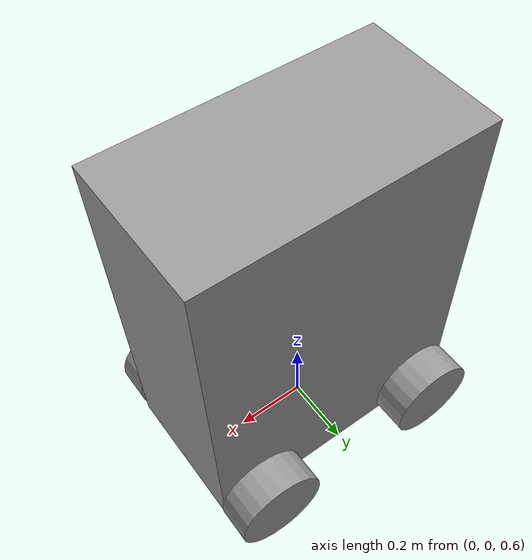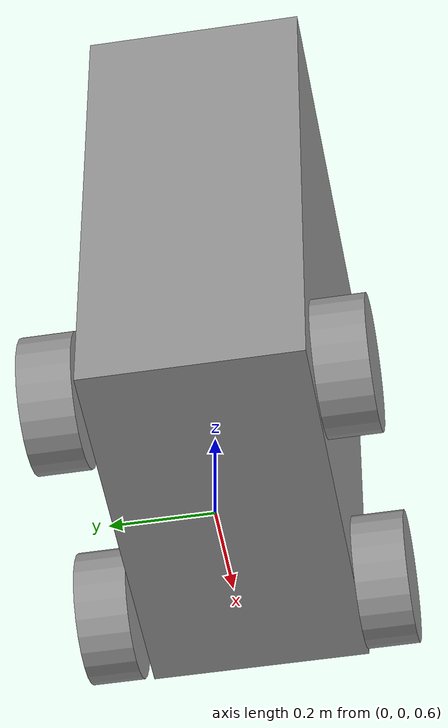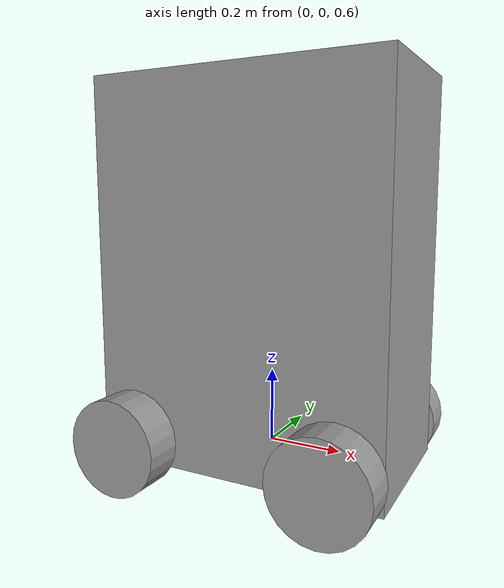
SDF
<?xml version='1.0'?>
<sdf version='1.6'>
  <model name='robot'>
    <link name='link_1'>
      <pose frame=''>0.270998 -0.281948 0.647062 1.57 -0 0</pose>
      <inertial>
        <mass>1</mass>
        <inertia>
          <ixx>0.145833</ixx>
          <ixy>0</ixy>
          <ixz>0</ixz>
          <iyy>0.145833</iyy>
          <iyz>0</iyz>
          <izz>0.125</izz>
        </inertia>
        <pose frame=''>0 0 0 0 -0 0</pose>
      </inertial>
      <self_collide>0</self_collide>
      <kinematic>0</kinematic>
      <visual name='visual'>
        <pose frame=''>0 0 0 0 -0 0</pose>
        <geometry>
          <cylinder>
            <radius>0.127</radius>
            <length>0.1</length>
          </cylinder>
        </geometry>
        <material>
          <lighting>1</lighting>
          <script>
            <uri>file://media/materials/scripts/gazebo.material</uri>
            <name>Gazebo/Grey</name>
          </script>
          <shader type='pixel'>
            <normal_map>__default__</normal_map>
          </shader>
          <ambient>0.3 0.3 0.3 1</ambient>
          <diffuse>0.7 0.7 0.7 1</diffuse>
          <specular>0.01 0.01 0.01 1</specular>
          <emissive>0 0 0 1</emissive>
        </material>
        <transparency>0</transparency>
        <cast_shadows>1</cast_shadows>
      </visual>
      <collision name='collision'>
        <laser_retro>0</laser_retro>
        <max_contacts>10</max_contacts>
        <pose frame=''>0 0 0 0 -0 0</pose>
        <geometry>
          <cylinder>
            <radius>0.127</radius>
            <length>0.1</length>
          </cylinder>
        </geometry>
        <surface>
          <friction>
            <ode>
              <mu>1</mu>
              <mu2>1</mu2>
              <fdir1>0 0 0</fdir1>
              <slip1>0</slip1>
              <slip2>0</slip2>
            </ode>
            <torsional>
              <coefficient>1</coefficient>
              <patch_radius>0</patch_radius>
              <surface_radius>0</surface_radius>
              <use_patch_radius>1</use_patch_radius>
              <ode>
                <slip>0</slip>
              </ode>
            </torsional>
          </friction>
          <bounce>
            <restitution_coefficient>0</restitution_coefficient>
            <threshold>1e+06</threshold>
          </bounce>
          <contact>
            <collide_without_contact>0</collide_without_contact>
            <collide_without_contact_bitmask>1</collide_without_contact_bitmask>
            <collide_bitmask>1</collide_bitmask>
            <ode>
              <soft_cfm>0</soft_cfm>
              <soft_erp>0.2</soft_erp>
              <kp>1e+13</kp>
              <kd>1</kd>
              <max_vel>0.01</max_vel>
              <min_depth>0</min_depth>
            </ode>
            <bullet>
              <split_impulse>1</split_impulse>
              <split_impulse_penetration_threshold>-0.01</split_impulse_penetration_threshold>
              <soft_cfm>0</soft_cfm>
              <soft_erp>0.2</soft_erp>
              <kp>1e+13</kp>
              <kd>1</kd>
            </bullet>
          </contact>
        </surface>
      </collision>
    </link>
    <link name='link_1_clone'>
      <pose frame=''>0.275142 0.249179 0.641427 1.57 -0 0</pose>
      <inertial>
        <mass>1</mass>
        <inertia>
          <ixx>0.145833</ixx>
          <ixy>0</ixy>
          <ixz>0</ixz>
          <iyy>0.145833</iyy>
          <iyz>0</iyz>
          <izz>0.125</izz>
        </inertia>
        <pose frame=''>0 0 0 0 -0 0</pose>
      </inertial>
      <self_collide>0</self_collide>
      <kinematic>0</kinematic>
      <visual name='visual'>
        <pose frame=''>0 0 0 0 -0 0</pose>
        <geometry>
          <cylinder>
            <radius>0.127</radius>
            <length>0.1</length>
          </cylinder>
        </geometry>
        <material>
          <lighting>1</lighting>
          <script>
            <uri>file://media/materials/scripts/gazebo.material</uri>
            <name>Gazebo/Grey</name>
          </script>
          <shader type='pixel'>
            <normal_map>__default__</normal_map>
          </shader>
          <ambient>0.3 0.3 0.3 1</ambient>
          <diffuse>0.7 0.7 0.7 1</diffuse>
          <specular>0.01 0.01 0.01 1</specular>
          <emissive>0 0 0 1</emissive>
        </material>
        <transparency>0</transparency>
        <cast_shadows>1</cast_shadows>
      </visual>
      <collision name='collision'>
        <laser_retro>0</laser_retro>
        <max_contacts>10</max_contacts>
        <pose frame=''>0 0 0 0 -0 0</pose>
        <geometry>
          <cylinder>
            <radius>0.127</radius>
            <length>0.1</length>
          </cylinder>
        </geometry>
        <surface>
          <friction>
            <ode>
              <mu>1</mu>
              <mu2>1</mu2>
              <fdir1>0 0 0</fdir1>
              <slip1>0</slip1>
              <slip2>0</slip2>
            </ode>
            <torsional>
              <coefficient>1</coefficient>
              <patch_radius>0</patch_radius>
              <surface_radius>0</surface_radius>
              <use_patch_radius>1</use_patch_radius>
              <ode>
                <slip>0</slip>
              </ode>
            </torsional>
          </friction>
          <bounce>
            <restitution_coefficient>0</restitution_coefficient>
            <threshold>1e+06</threshold>
          </bounce>
          <contact>
            <collide_without_contact>0</collide_without_contact>
            <collide_without_contact_bitmask>1</collide_without_contact_bitmask>
            <collide_bitmask>1</collide_bitmask>
            <ode>
              <soft_cfm>0</soft_cfm>
              <soft_erp>0.2</soft_erp>
              <kp>1e+13</kp>
              <kd>1</kd>
              <max_vel>0.01</max_vel>
              <min_depth>0</min_depth>
            </ode>
            <bullet>
              <split_impulse>1</split_impulse>
              <split_impulse_penetration_threshold>-0.01</split_impulse_penetration_threshold>
              <soft_cfm>0</soft_cfm>
              <soft_erp>0.2</soft_erp>
              <kp>1e+13</kp>
              <kd>1</kd>
            </bullet>
          </contact>
        </surface>
      </collision>
    </link>
    <link name='link_1_clone_0'>
      <pose frame=''>-0.275153 0.242976 0.647654 1.57 -0 0</pose>
      <inertial>
        <mass>1</mass>
        <inertia>
          <ixx>0.145833</ixx>
          <ixy>0</ixy>
          <ixz>0</ixz>
          <iyy>0.145833</iyy>
          <iyz>0</iyz>
          <izz>0.125</izz>
        </inertia>
        <pose frame=''>0 0 0 0 -0 0</pose>
      </inertial>
      <self_collide>0</self_collide>
      <kinematic>0</kinematic>
      <visual name='visual'>
        <pose frame=''>0 0 0 0 -0 0</pose>
        <geometry>
          <cylinder>
            <radius>0.127</radius>
            <length>0.1</length>
          </cylinder>
        </geometry>
        <material>
          <lighting>1</lighting>
          <script>
            <uri>file://media/materials/scripts/gazebo.material</uri>
            <name>Gazebo/Grey</name>
          </script>
          <shader type='pixel'>
            <normal_map>__default__</normal_map>
          </shader>
          <ambient>0.3 0.3 0.3 1</ambient>
          <diffuse>0.7 0.7 0.7 1</diffuse>
          <specular>0.01 0.01 0.01 1</specular>
          <emissive>0 0 0 1</emissive>
        </material>
        <transparency>0</transparency>
        <cast_shadows>1</cast_shadows>
      </visual>
      <collision name='collision'>
        <laser_retro>0</laser_retro>
        <max_contacts>10</max_contacts>
        <pose frame=''>0 0 0 0 -0 0</pose>
        <geometry>
          <cylinder>
            <radius>0.127</radius>
            <length>0.1</length>
          </cylinder>
        </geometry>
        <surface>
          <friction>
            <ode>
              <mu>1</mu>
              <mu2>1</mu2>
              <fdir1>0 0 0</fdir1>
              <slip1>0</slip1>
              <slip2>0</slip2>
            </ode>
            <torsional>
              <coefficient>1</coefficient>
              <patch_radius>0</patch_radius>
              <surface_radius>0</surface_radius>
              <use_patch_radius>1</use_patch_radius>
              <ode>
                <slip>0</slip>
              </ode>
            </torsional>
          </friction>
          <bounce>
            <restitution_coefficient>0</restitution_coefficient>
            <threshold>1e+06</threshold>
          </bounce>
          <contact>
            <collide_without_contact>0</collide_without_contact>
            <collide_without_contact_bitmask>1</collide_without_contact_bitmask>
            <collide_bitmask>1</collide_bitmask>
            <ode>
              <soft_cfm>0</soft_cfm>
              <soft_erp>0.2</soft_erp>
              <kp>1e+13</kp>
              <kd>1</kd>
              <max_vel>0.01</max_vel>
              <min_depth>0</min_depth>
            </ode>
            <bullet>
              <split_impulse>1</split_impulse>
              <split_impulse_penetration_threshold>-0.01</split_impulse_penetration_threshold>
              <soft_cfm>0</soft_cfm>
              <soft_erp>0.2</soft_erp>
              <kp>1e+13</kp>
              <kd>1</kd>
            </bullet>
          </contact>
        </surface>
      </collision>
    </link>
    <link name='link_1_clone_1'>
      <pose frame=''>-0.282405 -0.289294 0.64073 1.57 -0 0</pose>
      <inertial>
        <mass>1</mass>
        <inertia>
          <ixx>0.145833</ixx>
          <ixy>0</ixy>
          <ixz>0</ixz>
          <iyy>0.145833</iyy>
          <iyz>0</iyz>
          <izz>0.125</izz>
        </inertia>
        <pose frame=''>0 0 0 0 -0 0</pose>
      </inertial>
      <self_collide>0</self_collide>
      <kinematic>0</kinematic>
      <visual name='visual'>
        <pose frame=''>0 0 0 0 -0 0</pose>
        <geometry>
          <cylinder>
            <radius>0.127</radius>
            <length>0.1</length>
          </cylinder>
        </geometry>
        <material>
          <lighting>1</lighting>
          <script>
            <uri>file://media/materials/scripts/gazebo.material</uri>
            <name>Gazebo/Grey</name>
          </script>
          <shader type='pixel'>
            <normal_map>__default__</normal_map>
          </shader>
          <ambient>0.3 0.3 0.3 1</ambient>
          <diffuse>0.7 0.7 0.7 1</diffuse>
          <specular>0.01 0.01 0.01 1</specular>
          <emissive>0 0 0 1</emissive>
        </material>
        <transparency>0</transparency>
        <cast_shadows>1</cast_shadows>
      </visual>
      <collision name='collision'>
        <laser_retro>0</laser_retro>
        <max_contacts>10</max_contacts>
        <pose frame=''>0 0 0 0 -0 0</pose>
        <geometry>
          <cylinder>
            <radius>0.127</radius>
            <length>0.1</length>
          </cylinder>
        </geometry>
        <surface>
          <friction>
            <ode>
              <mu>1</mu>
              <mu2>1</mu2>
              <fdir1>0 0 0</fdir1>
              <slip1>0</slip1>
              <slip2>0</slip2>
            </ode>
            <torsional>
              <coefficient>1</coefficient>
              <patch_radius>0</patch_radius>
              <surface_radius>0</surface_radius>
              <use_patch_radius>1</use_patch_radius>
              <ode>
                <slip>0</slip>
              </ode>
            </torsional>
          </friction>
          <bounce>
            <restitution_coefficient>0</restitution_coefficient>
            <threshold>1e+06</threshold>
          </bounce>
          <contact>
            <collide_without_contact>0</collide_without_contact>
            <collide_without_contact_bitmask>1</collide_without_contact_bitmask>
            <collide_bitmask>1</collide_bitmask>
            <ode>
              <soft_cfm>0</soft_cfm>
              <soft_erp>0.2</soft_erp>
              <kp>1e+13</kp>
              <kd>1</kd>
              <max_vel>0.01</max_vel>
              <min_depth>0</min_depth>
            </ode>
            <bullet>
              <split_impulse>1</split_impulse>
              <split_impulse_penetration_threshold>-0.01</split_impulse_penetration_threshold>
              <soft_cfm>0</soft_cfm>
              <soft_erp>0.2</soft_erp>
              <kp>1e+13</kp>
              <kd>1</kd>
            </bullet>
          </contact>
        </surface>
      </collision>
    </link>
    <link name='link_2'>
      <pose frame=''>-0.000264 -0.021745 1.07308 0 -0 0</pose>
      <inertial>
        <mass>0.325742</mass>
        <inertia>
          <ixx>0.0318616</ixx>
          <ixy>0</ixy>
          <ixz>0</ixz>
          <iyy>0.0437228</iyy>
          <iyz>0</iyz>
          <izz>0.021294</izz>
        </inertia>
        <pose frame=''>0 0 0 0 -0 0</pose>
      </inertial>
      <self_collide>0</self_collide>
      <kinematic>0</kinematic>
      <gravity>1</gravity>
      <visual name='visual'>
        <pose frame=''>0 0 0 0 -0 0</pose>
        <geometry>
          <box>
            <size>0.781473 0.41683 1</size>
          </box>
        </geometry>
        <material>
          <lighting>1</lighting>
          <script>
            <uri>file://media/materials/scripts/gazebo.material</uri>
            <name>Gazebo/Grey</name>
          </script>
          <shader type='pixel'>
            <normal_map>__default__</normal_map>
          </shader>
          <ambient>0.3 0.3 0.3 1</ambient>
          <diffuse>0.7 0.7 0.7 1</diffuse>
          <specular>0.01 0.01 0.01 1</specular>
          <emissive>0 0 0 1</emissive>
        </material>
        <transparency>0</transparency>
        <cast_shadows>1</cast_shadows>
      </visual>
      <collision name='collision'>
        <laser_retro>0</laser_retro>
        <max_contacts>10</max_contacts>
        <pose frame=''>0 0 0 0 -0 0</pose>
        <geometry>
          <box>
            <size>0.781473 0.41683 1</size>
          </box>
        </geometry>
        <surface>
          <friction>
            <ode>
              <mu>1</mu>
              <mu2>1</mu2>
              <fdir1>0 0 0</fdir1>
              <slip1>0</slip1>
              <slip2>0</slip2>
            </ode>
            <torsional>
              <coefficient>1</coefficient>
              <patch_radius>0</patch_radius>
              <surface_radius>0</surface_radius>
              <use_patch_radius>1</use_patch_radius>
              <ode>
                <slip>0</slip>
              </ode>
            </torsional>
          </friction>
          <bounce>
            <restitution_coefficient>0</restitution_coefficient>
            <threshold>1e+06</threshold>
          </bounce>
          <contact>
            <collide_without_contact>0</collide_without_contact>
            <collide_without_contact_bitmask>1</collide_without_contact_bitmask>
            <collide_bitmask>1</collide_bitmask>
            <ode>
              <soft_cfm>0</soft_cfm>
              <soft_erp>0.2</soft_erp>
              <kp>1e+13</kp>
              <kd>1</kd>
              <max_vel>0.01</max_vel>
              <min_depth>0</min_depth>
            </ode>
            <bullet>
              <split_impulse>1</split_impulse>
              <split_impulse_penetration_threshold>-0.01</split_impulse_penetration_threshold>
              <soft_cfm>0</soft_cfm>
              <soft_erp>0.2</soft_erp>
              <kp>1e+13</kp>
              <kd>1</kd>
            </bullet>
          </contact>
        </surface>
      </collision>
    </link>
    <joint name='link_2_JOINT_0' type='revolute'>
      <parent>link_2</parent>
      <child>link_1_clone_1</child>
      <pose frame=''>0 0 0 0 -0 0</pose>
      <axis>
        <xyz>0 0 1</xyz>
        <use_parent_model_frame>0</use_parent_model_frame>
        <limit>
          <lower>-1.79769e+308</lower>
          <upper>1.79769e+308</upper>
          <effort>-1</effort>
          <velocity>-1</velocity>
        </limit>
        <dynamics>
          <spring_reference>0</spring_reference>
          <spring_stiffness>0</spring_stiffness>
          <damping>0</damping>
        </dynamics>
      </axis>
      <physics>
        <ode>
          <limit>
            <cfm>0</cfm>
            <erp>0.2</erp>
          </limit>
          <suspension>
            <cfm>0</cfm>
            <erp>0.2</erp>
          </suspension>
        </ode>
      </physics>
    </joint>
    <joint name='link_2_JOINT_2' type='revolute'>
      <parent>link_2</parent>
      <child>link_1</child>
      <pose frame=''>0 0 0 0 -0 0</pose>
      <axis>
        <xyz>0 0 1</xyz>
        <use_parent_model_frame>0</use_parent_model_frame>
        <limit>
          <lower>-1.79769e+308</lower>
          <upper>1.79769e+308</upper>
          <effort>-1</effort>
          <velocity>-1</velocity>
        </limit>
        <dynamics>
          <spring_reference>0</spring_reference>
          <spring_stiffness>0</spring_stiffness>
          <damping>0</damping>
          <friction>0</friction>
        </dynamics>
      </axis>
      <physics>
        <ode>
          <limit>
            <cfm>0</cfm>
            <erp>0.2</erp>
          </limit>
          <suspension>
            <cfm>0</cfm>
            <erp>0.2</erp>
          </suspension>
        </ode>
      </physics>
    </joint>
    <joint name='link_2_JOINT_3' type='revolute'>
      <parent>link_2</parent>
      <child>link_1_clone</child>
      <pose frame=''>0 0 0 0 -0 0</pose>
      <axis>
        <xyz>0 0 1</xyz>
        <use_parent_model_frame>0</use_parent_model_frame>
        <limit>
          <lower>-1.79769e+308</lower>
          <upper>1.79769e+308</upper>
          <effort>-1</effort>
          <velocity>-1</velocity>
        </limit>
        <dynamics>
          <spring_reference>0</spring_reference>
          <spring_stiffness>0</spring_stiffness>
          <damping>0</damping>
          <friction>0</friction>
        </dynamics>
      </axis>
      <physics>
        <ode>
          <limit>
            <cfm>0</cfm>
            <erp>0.2</erp>
          </limit>
          <suspension>
            <cfm>0</cfm>
            <erp>0.2</erp>
          </suspension>
        </ode>
      </physics>
    </joint>
    <joint name='link_2_JOINT_4' type='revolute'>
      <parent>link_2</parent>
      <child>link_1_clone_0</child>
      <pose frame=''>0 0 0 0 -0 0</pose>
      <axis>
        <xyz>0 0 1</xyz>
        <use_parent_model_frame>0</use_parent_model_frame>
        <limit>
          <lower>-1.79769e+308</lower>
          <upper>1.79769e+308</upper>
          <effort>-1</effort>
          <velocity>-1</velocity>
        </limit>
        <dynamics>
          <spring_reference>0</spring_reference>
          <spring_stiffness>0</spring_stiffness>
          <damping>0</damping>
          <friction>0</friction>
        </dynamics>
      </axis>
      <physics>
        <ode>
          <limit>
            <cfm>0</cfm>
            <erp>0.2</erp>
          </limit>
          <suspension>
            <cfm>0</cfm>
            <erp>0.2</erp>
          </suspension>
        </ode>
      </physics>
    </joint>
    <static>0</static>
    <allow_auto_disable>1</allow_auto_disable>
  </model>
</sdf>
